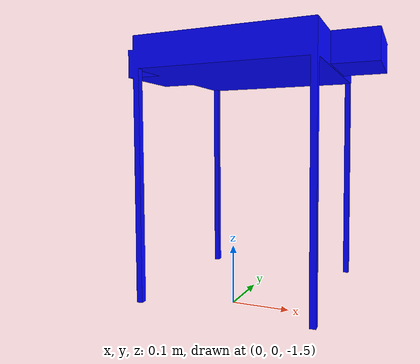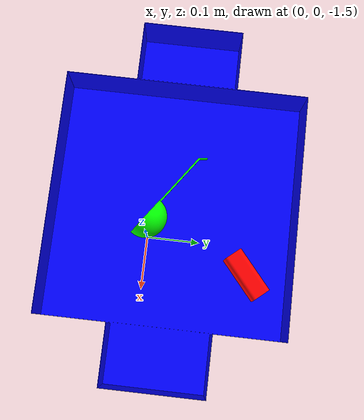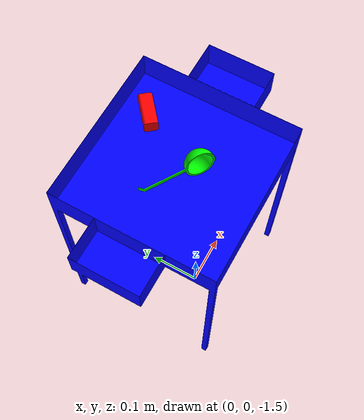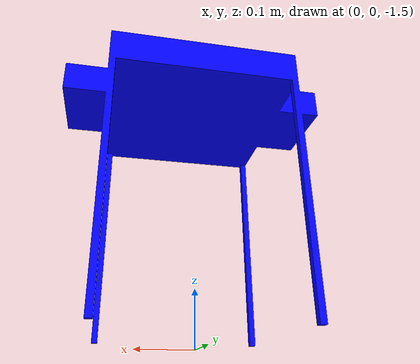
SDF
<?xml version="1.0"?>
<sdf version="1.9">
  <model name="trash">
    <static>true</static>
    <link name="ladle_link">
    <pose>0.1 0 -1.54 0 0 0</pose>
      <collision name="ladle_collision">
        <geometry>
          <mesh>
            <uri>model://trash/ladle.stl</uri>
<scale>0.005 0.005 0.005</scale>
          </mesh>
        </geometry>
      </collision>

      <visual name="ladle_visual">
        <geometry>
          <mesh>
            <uri>model://trash/ladle.stl</uri>
<scale>0.005 0.005 0.005</scale>
          </mesh>
        </geometry>
<material>
    <ambient>0 1 0 1</ambient>
    <diffuse>0 1 0 1</diffuse>
  </material>
      </visual>
    </link>

        <link name="bottle_link">
            <pose>0.2 0.0 -1.56 0 0 0</pose>
      <collision name="ladle_collision">
        <geometry>
          <mesh>
            <uri>model://trash/bottle.stl</uri>
<scale>0.005 0.005 0.005</scale>
          </mesh>
        </geometry>
      </collision>

      <visual name="bottle_visual">
        <geometry>
          <mesh>
            <uri>model://trash/bottle.stl</uri>
<scale>0.005 0.005 0.005</scale>
          </mesh>
        </geometry>
  <material>
    <ambient>1 0 0 1</ambient>
    <diffuse>1 0 0 1</diffuse>
  </material>
      </visual>
    </link>

<link name="table_link">
            <pose>0 0 -0.60 0 3.14 0</pose>
      <collision name="table_collision">
        <geometry>
          <mesh>
            <uri>model://trash/table.stl</uri>
                        <scale>0.005 0.005 0.005</scale>
          </mesh>
        </geometry>
      </collision>

      <visual name="table_visual">
        <geometry>
          <mesh>
            <uri>model://trash/table.stl</uri>
            <scale>0.005 0.005 0.005</scale>
          </mesh>
        </geometry>
          <material>
    <ambient>0 0 1 1</ambient>
    <diffuse>0 0 1 1</diffuse>
  </material>
      </visual>
    </link>
  </model>
</sdf>
